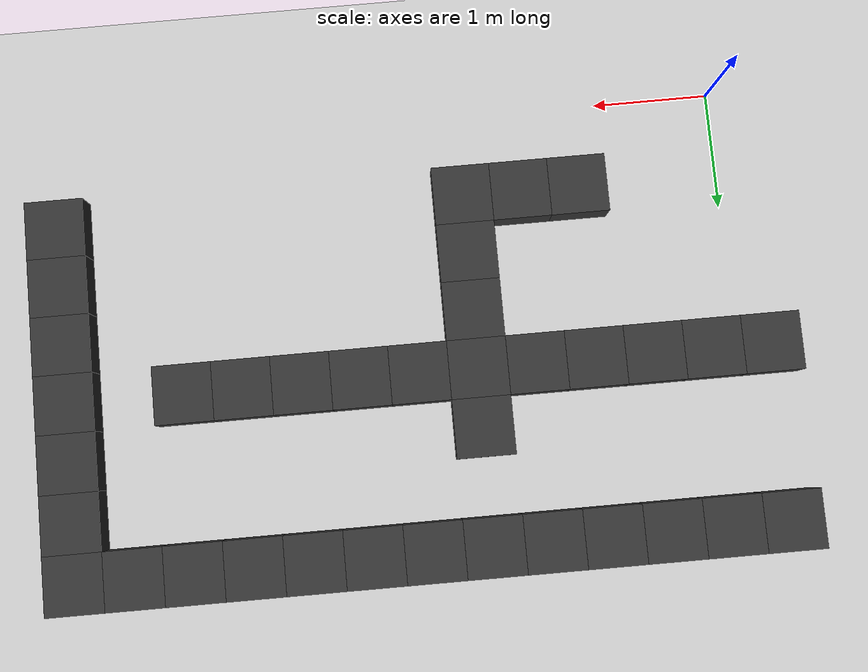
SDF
<sdf version="1.7">
 <world name="default">
  <model name="ground">
   <static>true</static>
   <link name="link">
    <collision name="col">
     <geometry><plane><normal>0 0 1</normal><size>200 200</size></plane></geometry>
    </collision>
    <visual name="vis">
     <geometry><plane><normal>0 0 1</normal><size>200 200</size></plane></geometry>
     <material>
      <ambient>0.25 0.25 0.25 1</ambient>
      <diffuse>0.80 0.80 0.80 1</diffuse>
      <specular>0.05 0.05 0.05 1</specular>
     </material>
    </visual>
   </link>
  </model>
  <model name="w_9_14">
   <static>true</static>
   <pose>1.250 0.750 0.125 0 0 0</pose>
   <link name="link">
    <collision name="col"><geometry><box><size>0.500 0.500 0.250</size></box></geometry></collision>
    <visual name="vis">
     <geometry><box><size>0.500 0.500 0.250</size></box></geometry>
     <material><ambient>0.2 0.2 0.2 1.0</ambient></material>
    </visual>
   </link>
  </model>
  <model name="w_9_15">
   <static>true</static>
   <pose>1.750 0.750 0.125 0 0 0</pose>
   <link name="link">
    <collision name="col"><geometry><box><size>0.500 0.500 0.250</size></box></geometry></collision>
    <visual name="vis">
     <geometry><box><size>0.500 0.500 0.250</size></box></geometry>
     <material><ambient>0.2 0.2 0.2 1.0</ambient></material>
    </visual>
   </link>
  </model>
  <model name="w_9_16">
   <static>true</static>
   <pose>2.250 0.750 0.125 0 0 0</pose>
   <link name="link">
    <collision name="col"><geometry><box><size>0.500 0.500 0.250</size></box></geometry></collision>
    <visual name="vis">
     <geometry><box><size>0.500 0.500 0.250</size></box></geometry>
     <material><ambient>0.2 0.2 0.2 1.0</ambient></material>
    </visual>
   </link>
  </model>
  <model name="w_9_23">
   <static>true</static>
   <pose>5.750 0.750 0.125 0 0 0</pose>
   <link name="link">
    <collision name="col"><geometry><box><size>0.500 0.500 0.250</size></box></geometry></collision>
    <visual name="vis">
     <geometry><box><size>0.500 0.500 0.250</size></box></geometry>
     <material><ambient>0.2 0.2 0.2 1.0</ambient></material>
    </visual>
   </link>
  </model>
  <model name="w_10_16">
   <static>true</static>
   <pose>2.250 1.250 0.125 0 0 0</pose>
   <link name="link">
    <collision name="col"><geometry><box><size>0.500 0.500 0.250</size></box></geometry></collision>
    <visual name="vis">
     <geometry><box><size>0.500 0.500 0.250</size></box></geometry>
     <material><ambient>0.2 0.2 0.2 1.0</ambient></material>
    </visual>
   </link>
  </model>
  <model name="w_10_23">
   <static>true</static>
   <pose>5.750 1.250 0.125 0 0 0</pose>
   <link name="link">
    <collision name="col"><geometry><box><size>0.500 0.500 0.250</size></box></geometry></collision>
    <visual name="vis">
     <geometry><box><size>0.500 0.500 0.250</size></box></geometry>
     <material><ambient>0.2 0.2 0.2 1.0</ambient></material>
    </visual>
   </link>
  </model>
  <model name="w_11_16">
   <static>true</static>
   <pose>2.250 1.750 0.125 0 0 0</pose>
   <link name="link">
    <collision name="col"><geometry><box><size>0.500 0.500 0.250</size></box></geometry></collision>
    <visual name="vis">
     <geometry><box><size>0.500 0.500 0.250</size></box></geometry>
     <material><ambient>0.2 0.2 0.2 1.0</ambient></material>
    </visual>
   </link>
  </model>
  <model name="w_11_23">
   <static>true</static>
   <pose>5.750 1.750 0.125 0 0 0</pose>
   <link name="link">
    <collision name="col"><geometry><box><size>0.500 0.500 0.250</size></box></geometry></collision>
    <visual name="vis">
     <geometry><box><size>0.500 0.500 0.250</size></box></geometry>
     <material><ambient>0.2 0.2 0.2 1.0</ambient></material>
    </visual>
   </link>
  </model>
  <model name="w_12_11">
   <static>true</static>
   <pose>-0.250 2.250 0.125 0 0 0</pose>
   <link name="link">
    <collision name="col"><geometry><box><size>0.500 0.500 0.250</size></box></geometry></collision>
    <visual name="vis">
     <geometry><box><size>0.500 0.500 0.250</size></box></geometry>
     <material><ambient>0.2 0.2 0.2 1.0</ambient></material>
    </visual>
   </link>
  </model>
  <model name="w_12_12">
   <static>true</static>
   <pose>0.250 2.250 0.125 0 0 0</pose>
   <link name="link">
    <collision name="col"><geometry><box><size>0.500 0.500 0.250</size></box></geometry></collision>
    <visual name="vis">
     <geometry><box><size>0.500 0.500 0.250</size></box></geometry>
     <material><ambient>0.2 0.2 0.2 1.0</ambient></material>
    </visual>
   </link>
  </model>
  <model name="w_12_13">
   <static>true</static>
   <pose>0.750 2.250 0.125 0 0 0</pose>
   <link name="link">
    <collision name="col"><geometry><box><size>0.500 0.500 0.250</size></box></geometry></collision>
    <visual name="vis">
     <geometry><box><size>0.500 0.500 0.250</size></box></geometry>
     <material><ambient>0.2 0.2 0.2 1.0</ambient></material>
    </visual>
   </link>
  </model>
  <model name="w_12_14">
   <static>true</static>
   <pose>1.250 2.250 0.125 0 0 0</pose>
   <link name="link">
    <collision name="col"><geometry><box><size>0.500 0.500 0.250</size></box></geometry></collision>
    <visual name="vis">
     <geometry><box><size>0.500 0.500 0.250</size></box></geometry>
     <material><ambient>0.2 0.2 0.2 1.0</ambient></material>
    </visual>
   </link>
  </model>
  <model name="w_12_15">
   <static>true</static>
   <pose>1.750 2.250 0.125 0 0 0</pose>
   <link name="link">
    <collision name="col"><geometry><box><size>0.500 0.500 0.250</size></box></geometry></collision>
    <visual name="vis">
     <geometry><box><size>0.500 0.500 0.250</size></box></geometry>
     <material><ambient>0.2 0.2 0.2 1.0</ambient></material>
    </visual>
   </link>
  </model>
  <model name="w_12_16">
   <static>true</static>
   <pose>2.250 2.250 0.125 0 0 0</pose>
   <link name="link">
    <collision name="col"><geometry><box><size>0.500 0.500 0.250</size></box></geometry></collision>
    <visual name="vis">
     <geometry><box><size>0.500 0.500 0.250</size></box></geometry>
     <material><ambient>0.2 0.2 0.2 1.0</ambient></material>
    </visual>
   </link>
  </model>
  <model name="w_12_17">
   <static>true</static>
   <pose>2.750 2.250 0.125 0 0 0</pose>
   <link name="link">
    <collision name="col"><geometry><box><size>0.500 0.500 0.250</size></box></geometry></collision>
    <visual name="vis">
     <geometry><box><size>0.500 0.500 0.250</size></box></geometry>
     <material><ambient>0.2 0.2 0.2 1.0</ambient></material>
    </visual>
   </link>
  </model>
  <model name="w_12_18">
   <static>true</static>
   <pose>3.250 2.250 0.125 0 0 0</pose>
   <link name="link">
    <collision name="col"><geometry><box><size>0.500 0.500 0.250</size></box></geometry></collision>
    <visual name="vis">
     <geometry><box><size>0.500 0.500 0.250</size></box></geometry>
     <material><ambient>0.2 0.2 0.2 1.0</ambient></material>
    </visual>
   </link>
  </model>
  <model name="w_12_19">
   <static>true</static>
   <pose>3.750 2.250 0.125 0 0 0</pose>
   <link name="link">
    <collision name="col"><geometry><box><size>0.500 0.500 0.250</size></box></geometry></collision>
    <visual name="vis">
     <geometry><box><size>0.500 0.500 0.250</size></box></geometry>
     <material><ambient>0.2 0.2 0.2 1.0</ambient></material>
    </visual>
   </link>
  </model>
  <model name="w_12_20">
   <static>true</static>
   <pose>4.250 2.250 0.125 0 0 0</pose>
   <link name="link">
    <collision name="col"><geometry><box><size>0.500 0.500 0.250</size></box></geometry></collision>
    <visual name="vis">
     <geometry><box><size>0.500 0.500 0.250</size></box></geometry>
     <material><ambient>0.2 0.2 0.2 1.0</ambient></material>
    </visual>
   </link>
  </model>
  <model name="w_12_21">
   <static>true</static>
   <pose>4.750 2.250 0.125 0 0 0</pose>
   <link name="link">
    <collision name="col"><geometry><box><size>0.500 0.500 0.250</size></box></geometry></collision>
    <visual name="vis">
     <geometry><box><size>0.500 0.500 0.250</size></box></geometry>
     <material><ambient>0.2 0.2 0.2 1.0</ambient></material>
    </visual>
   </link>
  </model>
  <model name="w_12_23">
   <static>true</static>
   <pose>5.750 2.250 0.125 0 0 0</pose>
   <link name="link">
    <collision name="col"><geometry><box><size>0.500 0.500 0.250</size></box></geometry></collision>
    <visual name="vis">
     <geometry><box><size>0.500 0.500 0.250</size></box></geometry>
     <material><ambient>0.2 0.2 0.2 1.0</ambient></material>
    </visual>
   </link>
  </model>
  <model name="w_13_16">
   <static>true</static>
   <pose>2.250 2.750 0.125 0 0 0</pose>
   <link name="link">
    <collision name="col"><geometry><box><size>0.500 0.500 0.250</size></box></geometry></collision>
    <visual name="vis">
     <geometry><box><size>0.500 0.500 0.250</size></box></geometry>
     <material><ambient>0.2 0.2 0.2 1.0</ambient></material>
    </visual>
   </link>
  </model>
  <model name="w_13_23">
   <static>true</static>
   <pose>5.750 2.750 0.125 0 0 0</pose>
   <link name="link">
    <collision name="col"><geometry><box><size>0.500 0.500 0.250</size></box></geometry></collision>
    <visual name="vis">
     <geometry><box><size>0.500 0.500 0.250</size></box></geometry>
     <material><ambient>0.2 0.2 0.2 1.0</ambient></material>
    </visual>
   </link>
  </model>
  <model name="w_14_23">
   <static>true</static>
   <pose>5.750 3.250 0.125 0 0 0</pose>
   <link name="link">
    <collision name="col"><geometry><box><size>0.500 0.500 0.250</size></box></geometry></collision>
    <visual name="vis">
     <geometry><box><size>0.500 0.500 0.250</size></box></geometry>
     <material><ambient>0.2 0.2 0.2 1.0</ambient></material>
    </visual>
   </link>
  </model>
  <model name="w_15_11">
   <static>true</static>
   <pose>-0.250 3.750 0.125 0 0 0</pose>
   <link name="link">
    <collision name="col"><geometry><box><size>0.500 0.500 0.250</size></box></geometry></collision>
    <visual name="vis">
     <geometry><box><size>0.500 0.500 0.250</size></box></geometry>
     <material><ambient>0.2 0.2 0.2 1.0</ambient></material>
    </visual>
   </link>
  </model>
  <model name="w_15_12">
   <static>true</static>
   <pose>0.250 3.750 0.125 0 0 0</pose>
   <link name="link">
    <collision name="col"><geometry><box><size>0.500 0.500 0.250</size></box></geometry></collision>
    <visual name="vis">
     <geometry><box><size>0.500 0.500 0.250</size></box></geometry>
     <material><ambient>0.2 0.2 0.2 1.0</ambient></material>
    </visual>
   </link>
  </model>
  <model name="w_15_13">
   <static>true</static>
   <pose>0.750 3.750 0.125 0 0 0</pose>
   <link name="link">
    <collision name="col"><geometry><box><size>0.500 0.500 0.250</size></box></geometry></collision>
    <visual name="vis">
     <geometry><box><size>0.500 0.500 0.250</size></box></geometry>
     <material><ambient>0.2 0.2 0.2 1.0</ambient></material>
    </visual>
   </link>
  </model>
  <model name="w_15_14">
   <static>true</static>
   <pose>1.250 3.750 0.125 0 0 0</pose>
   <link name="link">
    <collision name="col"><geometry><box><size>0.500 0.500 0.250</size></box></geometry></collision>
    <visual name="vis">
     <geometry><box><size>0.500 0.500 0.250</size></box></geometry>
     <material><ambient>0.2 0.2 0.2 1.0</ambient></material>
    </visual>
   </link>
  </model>
  <model name="w_15_15">
   <static>true</static>
   <pose>1.750 3.750 0.125 0 0 0</pose>
   <link name="link">
    <collision name="col"><geometry><box><size>0.500 0.500 0.250</size></box></geometry></collision>
    <visual name="vis">
     <geometry><box><size>0.500 0.500 0.250</size></box></geometry>
     <material><ambient>0.2 0.2 0.2 1.0</ambient></material>
    </visual>
   </link>
  </model>
  <model name="w_15_16">
   <static>true</static>
   <pose>2.250 3.750 0.125 0 0 0</pose>
   <link name="link">
    <collision name="col"><geometry><box><size>0.500 0.500 0.250</size></box></geometry></collision>
    <visual name="vis">
     <geometry><box><size>0.500 0.500 0.250</size></box></geometry>
     <material><ambient>0.2 0.2 0.2 1.0</ambient></material>
    </visual>
   </link>
  </model>
  <model name="w_15_17">
   <static>true</static>
   <pose>2.750 3.750 0.125 0 0 0</pose>
   <link name="link">
    <collision name="col"><geometry><box><size>0.500 0.500 0.250</size></box></geometry></collision>
    <visual name="vis">
     <geometry><box><size>0.500 0.500 0.250</size></box></geometry>
     <material><ambient>0.2 0.2 0.2 1.0</ambient></material>
    </visual>
   </link>
  </model>
  <model name="w_15_18">
   <static>true</static>
   <pose>3.250 3.750 0.125 0 0 0</pose>
   <link name="link">
    <collision name="col"><geometry><box><size>0.500 0.500 0.250</size></box></geometry></collision>
    <visual name="vis">
     <geometry><box><size>0.500 0.500 0.250</size></box></geometry>
     <material><ambient>0.2 0.2 0.2 1.0</ambient></material>
    </visual>
   </link>
  </model>
  <model name="w_15_19">
   <static>true</static>
   <pose>3.750 3.750 0.125 0 0 0</pose>
   <link name="link">
    <collision name="col"><geometry><box><size>0.500 0.500 0.250</size></box></geometry></collision>
    <visual name="vis">
     <geometry><box><size>0.500 0.500 0.250</size></box></geometry>
     <material><ambient>0.2 0.2 0.2 1.0</ambient></material>
    </visual>
   </link>
  </model>
  <model name="w_15_20">
   <static>true</static>
   <pose>4.250 3.750 0.125 0 0 0</pose>
   <link name="link">
    <collision name="col"><geometry><box><size>0.500 0.500 0.250</size></box></geometry></collision>
    <visual name="vis">
     <geometry><box><size>0.500 0.500 0.250</size></box></geometry>
     <material><ambient>0.2 0.2 0.2 1.0</ambient></material>
    </visual>
   </link>
  </model>
  <model name="w_15_21">
   <static>true</static>
   <pose>4.750 3.750 0.125 0 0 0</pose>
   <link name="link">
    <collision name="col"><geometry><box><size>0.500 0.500 0.250</size></box></geometry></collision>
    <visual name="vis">
     <geometry><box><size>0.500 0.500 0.250</size></box></geometry>
     <material><ambient>0.2 0.2 0.2 1.0</ambient></material>
    </visual>
   </link>
  </model>
  <model name="w_15_22">
   <static>true</static>
   <pose>5.250 3.750 0.125 0 0 0</pose>
   <link name="link">
    <collision name="col"><geometry><box><size>0.500 0.500 0.250</size></box></geometry></collision>
    <visual name="vis">
     <geometry><box><size>0.500 0.500 0.250</size></box></geometry>
     <material><ambient>0.2 0.2 0.2 1.0</ambient></material>
    </visual>
   </link>
  </model>
  <model name="w_15_23">
   <static>true</static>
   <pose>5.750 3.750 0.125 0 0 0</pose>
   <link name="link">
    <collision name="col"><geometry><box><size>0.500 0.500 0.250</size></box></geometry></collision>
    <visual name="vis">
     <geometry><box><size>0.500 0.500 0.250</size></box></geometry>
     <material><ambient>0.2 0.2 0.2 1.0</ambient></material>
    </visual>
   </link>
  </model>
 </world>
</sdf>
